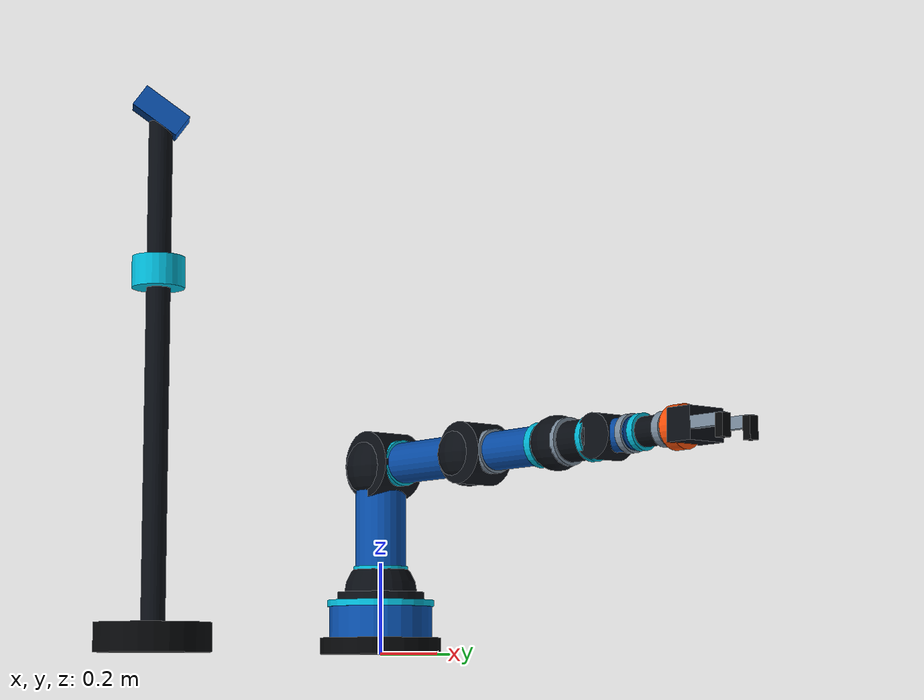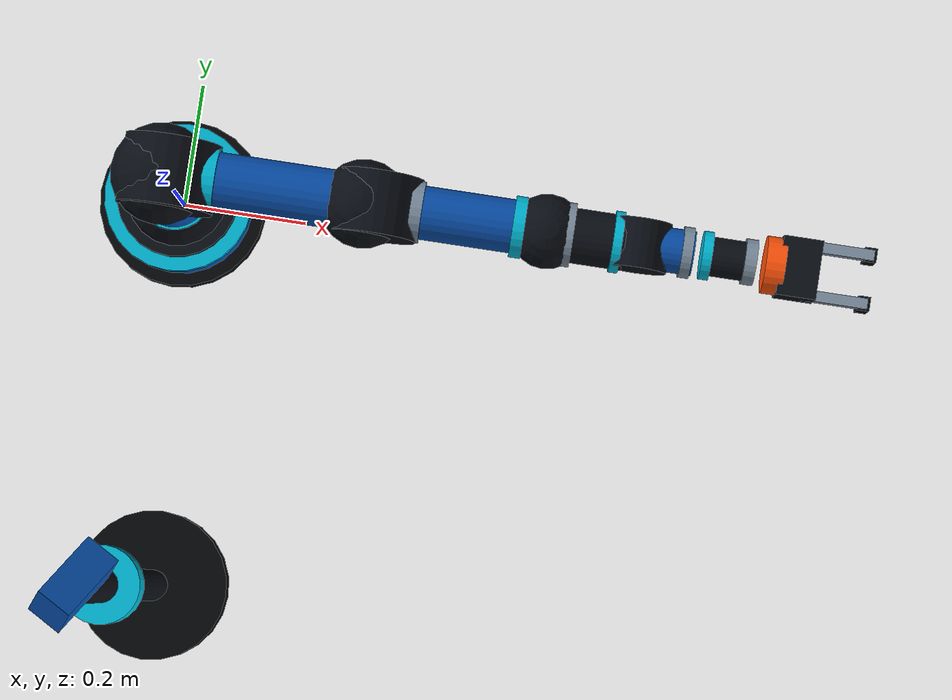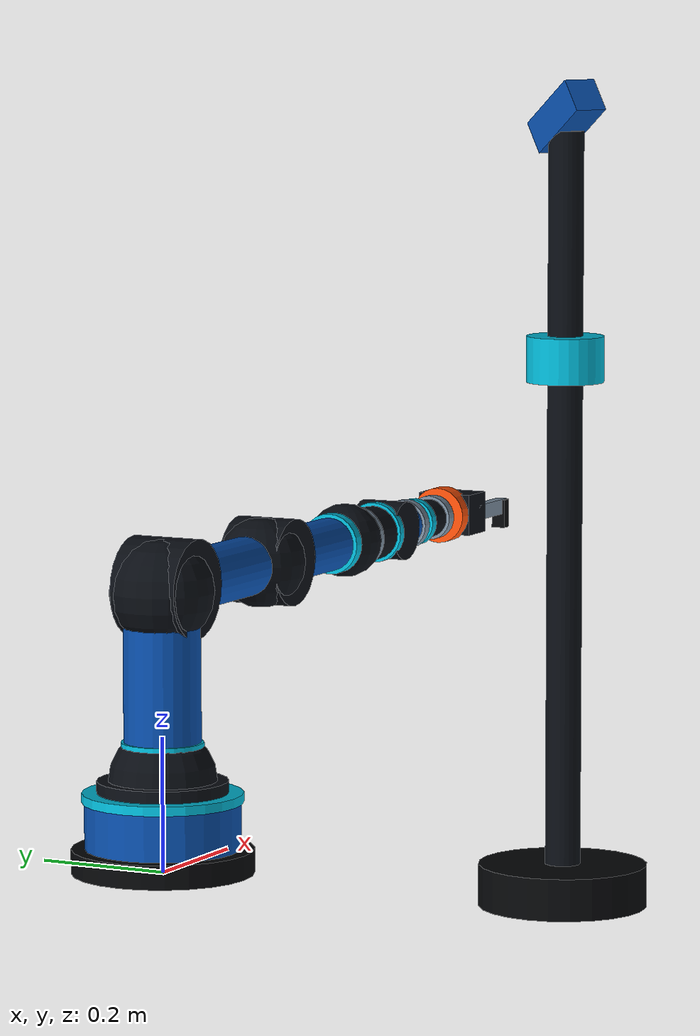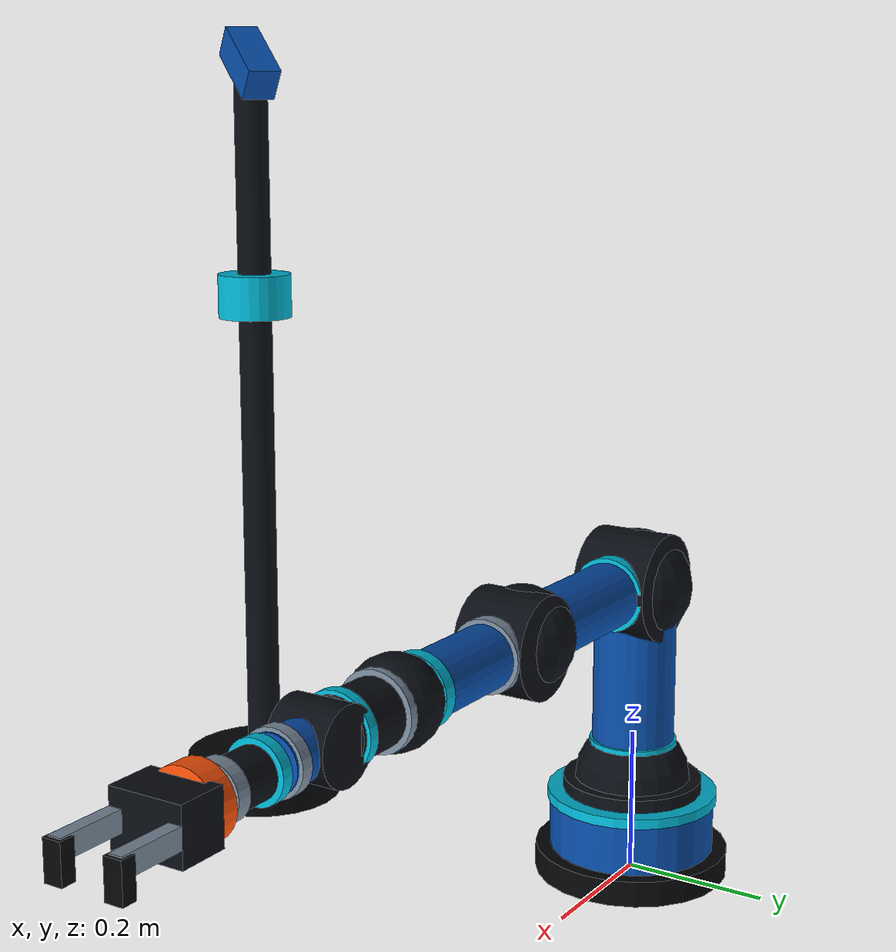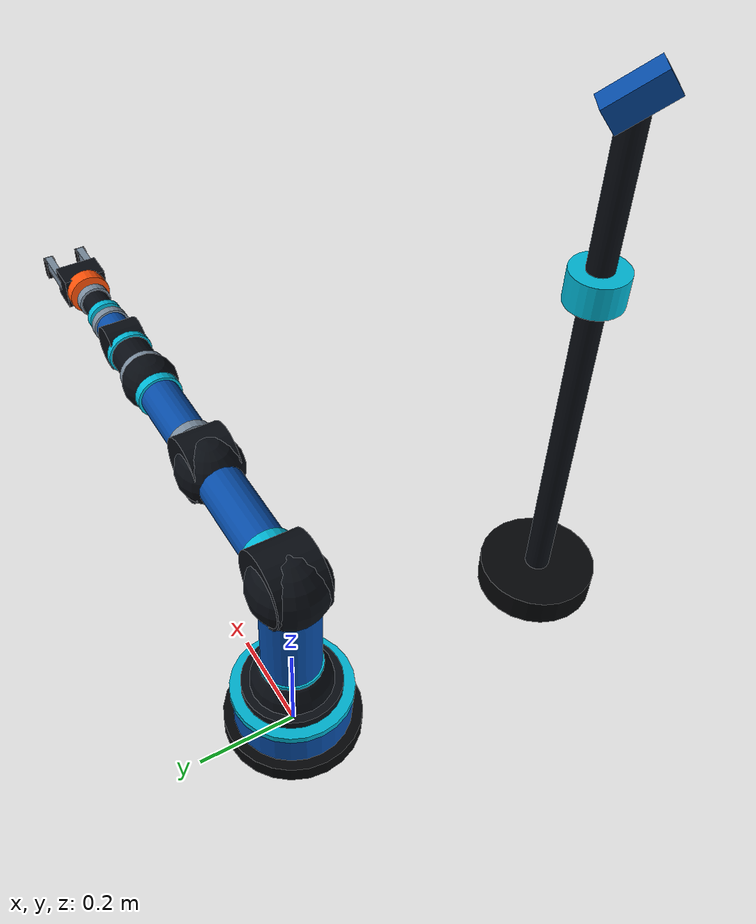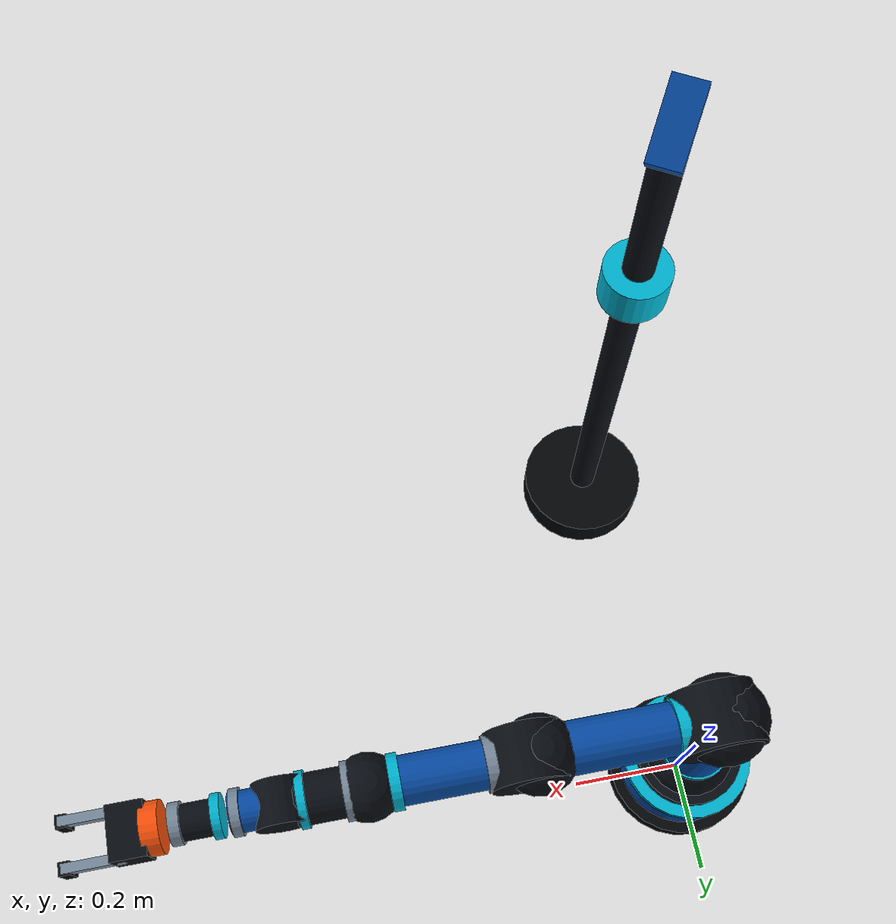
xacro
<?xml version="1.0"?>
<robot xmlns:xacro="http://www.ros.org/wiki/xacro" name="simple_arm">
  <xacro:arg name="use_mock_hardware" default="true"/>
  <xacro:arg name="use_gazebo" default="false"/>
  <xacro:arg name="controllers_file" default=""/>
  <xacro:arg name="enable_gripper_plugin" default="false"/>
  <xacro:arg name="enable_sensors" default="true"/>

  <material name="arm_blue"><color rgba="0.025 0.30 0.66 1.0"/></material>
  <material name="joint_dark"><color rgba="0.035 0.050 0.075 1.0"/></material>
  <material name="accent_cyan"><color rgba="0.00 0.72 0.84 1.0"/></material>
  <material name="machined_metal"><color rgba="0.48 0.55 0.62 1.0"/></material>
  <material name="rubber_black"><color rgba="0.015 0.020 0.028 1.0"/></material>
  <material name="tool_orange"><color rgba="1.00 0.32 0.035 1.0"/></material>

  <!-- A fixed world joint keeps the robot base anchored in Gazebo. -->
  <link name="world"/>
  <joint name="world_to_base" type="fixed">
    <parent link="world"/>
    <child link="base_link"/>
  </joint>

  <xacro:macro name="box_inertial" params="mass x y z">
    <inertial>
      <origin xyz="0 0 0" rpy="0 0 0"/>
      <mass value="${mass}"/>
      <inertia ixx="${mass * (y*y + z*z) / 12.0}" ixy="0" ixz="0"
               iyy="${mass * (x*x + z*z) / 12.0}" iyz="0"
               izz="${mass * (x*x + y*y) / 12.0}"/>
    </inertial>
  </xacro:macro>

  <link name="base_link">
    <visual><origin xyz="0 0 0.018"/><geometry><cylinder radius="0.135" length="0.036"/></geometry><material name="rubber_black"/></visual>
    <visual><origin xyz="0 0 0.070"/><geometry><cylinder radius="0.115" length="0.090"/></geometry><material name="arm_blue"/></visual>
    <visual><origin xyz="0 0 0.112"/><geometry><cylinder radius="0.119" length="0.014"/></geometry><material name="accent_cyan"/></visual>
    <visual><origin xyz="0 0 0.127"/><geometry><cylinder radius="0.097" length="0.020"/></geometry><material name="joint_dark"/></visual>
    <collision><origin xyz="0 0 0.06"/><geometry><cylinder radius="0.11" length="0.12"/></geometry></collision>
    <xacro:box_inertial mass="5.0" x="0.22" y="0.22" z="0.12"/>
  </link>

  <link name="link_1">
    <visual><origin xyz="0 0 0.15"/><geometry><cylinder radius="0.057" length="0.245"/></geometry><material name="arm_blue"/></visual>
    <visual><origin xyz="0 0 0.015"/><geometry><sphere radius="0.081"/></geometry><material name="joint_dark"/></visual>
    <visual><origin xyz="0 0 0.063"/><geometry><cylinder radius="0.061" length="0.022"/></geometry><material name="accent_cyan"/></visual>
    <visual><origin xyz="0 0 0.295"/><geometry><sphere radius="0.078"/></geometry><material name="joint_dark"/></visual>
    <visual><origin xyz="0 0 0.268"/><geometry><cylinder radius="0.061" length="0.020"/></geometry><material name="machined_metal"/></visual>
    <collision><origin xyz="0 0 0.15"/><geometry><cylinder radius="0.065" length="0.30"/></geometry></collision>
    <xacro:box_inertial mass="2.5" x="0.13" y="0.13" z="0.30"/>
  </link>
  <joint name="joint_1" type="revolute">
    <parent link="base_link"/><child link="link_1"/>
    <origin xyz="0 0 0.12"/><axis xyz="0 0 1"/>
    <limit lower="-3.14159" upper="3.14159" effort="80" velocity="1.5"/>
  </joint>

  <link name="link_2">
    <visual><origin xyz="0.16 0 0" rpy="0 1.5708 0"/><geometry><cylinder radius="0.045" length="0.255"/></geometry><material name="arm_blue"/></visual>
    <visual><origin xyz="0.012 0 0" rpy="1.5708 0 0"/><geometry><cylinder radius="0.074" length="0.105"/></geometry><material name="joint_dark"/></visual>
    <visual><origin xyz="0.075 0 0" rpy="0 1.5708 0"/><geometry><cylinder radius="0.051" length="0.020"/></geometry><material name="accent_cyan"/></visual>
    <visual><origin xyz="0.310 0 0"/><geometry><sphere radius="0.068"/></geometry><material name="joint_dark"/></visual>
    <collision><origin xyz="0.16 0 0" rpy="0 1.5708 0"/><geometry><cylinder radius="0.052" length="0.32"/></geometry></collision>
    <xacro:box_inertial mass="2.0" x="0.32" y="0.104" z="0.104"/>
  </link>
  <joint name="joint_2" type="revolute">
    <parent link="link_1"/><child link="link_2"/>
    <origin xyz="0 0 0.30"/><axis xyz="0 1 0"/>
    <limit lower="-2.35" upper="2.35" effort="70" velocity="1.5"/>
  </joint>

  <link name="link_3">
    <visual><origin xyz="0.14 0 0" rpy="0 1.5708 0"/><geometry><cylinder radius="0.041" length="0.220"/></geometry><material name="arm_blue"/></visual>
    <visual><origin xyz="0.010 0 0" rpy="1.5708 0 0"/><geometry><cylinder radius="0.066" length="0.095"/></geometry><material name="joint_dark"/></visual>
    <visual><origin xyz="0.070 0 0" rpy="0 1.5708 0"/><geometry><cylinder radius="0.047" length="0.018"/></geometry><material name="machined_metal"/></visual>
    <visual><origin xyz="0.270 0 0"/><geometry><sphere radius="0.057"/></geometry><material name="joint_dark"/></visual>
    <visual><origin xyz="0.226 0 0" rpy="0 1.5708 0"/><geometry><cylinder radius="0.047" length="0.018"/></geometry><material name="accent_cyan"/></visual>
    <collision><origin xyz="0.14 0 0" rpy="0 1.5708 0"/><geometry><cylinder radius="0.047" length="0.28"/></geometry></collision>
    <xacro:box_inertial mass="1.5" x="0.28" y="0.094" z="0.094"/>
  </link>
  <joint name="joint_3" type="revolute">
    <parent link="link_2"/><child link="link_3"/>
    <origin xyz="0.32 0 0"/><axis xyz="0 1 0"/>
    <limit lower="-2.60" upper="2.60" effort="60" velocity="1.8"/>
  </joint>

  <link name="link_4">
    <visual><origin xyz="0.055 0 0" rpy="0 1.5708 0"/><geometry><cylinder radius="0.042" length="0.105"/></geometry><material name="joint_dark"/></visual>
    <visual><origin xyz="0.020 0 0" rpy="0 1.5708 0"/><geometry><cylinder radius="0.049" length="0.018"/></geometry><material name="machined_metal"/></visual>
    <visual><origin xyz="0.096 0 0" rpy="0 1.5708 0"/><geometry><cylinder radius="0.047" length="0.014"/></geometry><material name="accent_cyan"/></visual>
    <collision><origin xyz="0.06 0 0" rpy="0 1.5708 0"/><geometry><cylinder radius="0.040" length="0.12"/></geometry></collision>
    <xacro:box_inertial mass="0.8" x="0.12" y="0.08" z="0.08"/>
  </link>
  <joint name="joint_4" type="revolute">
    <parent link="link_3"/><child link="link_4"/>
    <origin xyz="0.28 0 0"/><axis xyz="1 0 0"/>
    <limit lower="-3.14159" upper="3.14159" effort="35" velocity="2.2"/>
  </joint>

  <link name="link_5">
    <visual><origin xyz="0.05 0 0" rpy="0 1.5708 0"/><geometry><cylinder radius="0.034" length="0.085"/></geometry><material name="arm_blue"/></visual>
    <visual><origin xyz="0.010 0 0" rpy="1.5708 0 0"/><geometry><cylinder radius="0.046" length="0.075"/></geometry><material name="joint_dark"/></visual>
    <visual><origin xyz="0.082 0 0" rpy="0 1.5708 0"/><geometry><cylinder radius="0.039" length="0.016"/></geometry><material name="machined_metal"/></visual>
    <collision><origin xyz="0.05 0 0" rpy="0 1.5708 0"/><geometry><cylinder radius="0.035" length="0.10"/></geometry></collision>
    <xacro:box_inertial mass="0.5" x="0.10" y="0.07" z="0.07"/>
  </link>
  <joint name="joint_5" type="revolute">
    <parent link="link_4"/><child link="link_5"/>
    <origin xyz="0.12 0 0"/><axis xyz="0 1 0"/>
    <limit lower="-2.20" upper="2.20" effort="25" velocity="2.2"/>
  </joint>

  <link name="link_6">
    <visual><origin xyz="0.045 0 0" rpy="0 1.5708 0"/><geometry><cylinder radius="0.030" length="0.080"/></geometry><material name="joint_dark"/></visual>
    <visual><origin xyz="0.012 0 0" rpy="0 1.5708 0"/><geometry><cylinder radius="0.037" length="0.015"/></geometry><material name="accent_cyan"/></visual>
    <visual><origin xyz="0.078 0 0" rpy="0 1.5708 0"/><geometry><cylinder radius="0.035" length="0.018"/></geometry><material name="machined_metal"/></visual>
    <collision><origin xyz="0.05 0 0" rpy="0 1.5708 0"/><geometry><cylinder radius="0.030" length="0.10"/></geometry></collision>
    <xacro:box_inertial mass="0.35" x="0.10" y="0.06" z="0.06"/>
  </link>
  <joint name="joint_6" type="revolute">
    <parent link="link_5"/><child link="link_6"/>
    <origin xyz="0.10 0 0"/><axis xyz="1 0 0"/>
    <limit lower="-3.14159" upper="3.14159" effort="20" velocity="2.5"/>
  </joint>

  <link name="tool0">
    <visual><origin xyz="0.015 0 0" rpy="0 1.5708 0"/><geometry><cylinder radius="0.044" length="0.030"/></geometry><material name="tool_orange"/></visual>
    <visual><origin xyz="0.052 0 0"/><geometry><box size="0.060 0.090 0.065"/></geometry><material name="joint_dark"/></visual>
    <visual><origin xyz="0.112 0.037 0"/><geometry><box size="0.100 0.016 0.024"/></geometry><material name="machined_metal"/></visual>
    <visual><origin xyz="0.112 -0.037 0"/><geometry><box size="0.100 0.016 0.024"/></geometry><material name="machined_metal"/></visual>
    <visual><origin xyz="0.157 0.037 -0.012"/><geometry><box size="0.018 0.022 0.045"/></geometry><material name="rubber_black"/></visual>
    <visual><origin xyz="0.157 -0.037 -0.012"/><geometry><box size="0.018 0.022 0.045"/></geometry><material name="rubber_black"/></visual>
    <collision><origin xyz="0.045 0 0"/><geometry><box size="0.09 0.07 0.07"/></geometry></collision>
    <xacro:box_inertial mass="0.2" x="0.09" y="0.07" z="0.07"/>
  </link>
  <joint name="tool0_fixed_joint" type="fixed">
    <parent link="link_6"/><child link="tool0"/><origin xyz="0.10 0 0"/>
  </joint>

  <!-- Gazebo perception station. Fixed joints are published on /tf_static, while
       the articulated arm chain remains dynamic on /tf. -->
  <xacro:if value="$(arg enable_sensors)">
    <link name="sensor_mast_link">
      <visual>
        <origin xyz="0 0 0.55"/>
        <geometry><cylinder radius="0.025" length="1.10"/></geometry>
        <material name="joint_dark"/>
      </visual>
      <visual>
        <origin xyz="0 0 0.03"/>
        <geometry><cylinder radius="0.12" length="0.06"/></geometry>
        <material name="rubber_black"/>
      </visual>
      <collision>
        <origin xyz="0 0 0.55"/>
        <geometry><cylinder radius="0.03" length="1.10"/></geometry>
      </collision>
      <xacro:box_inertial mass="2.0" x="0.06" y="0.06" z="1.10"/>
    </link>
    <joint name="world_to_sensor_mast" type="fixed">
      <parent link="world"/>
      <child link="sensor_mast_link"/>
      <origin xyz="0.05 -0.62 0"/>
    </joint>

    <link name="depth_camera_link">
      <visual><geometry><box size="0.11 0.05 0.05"/></geometry><material name="arm_blue"/></visual>
      <collision><geometry><box size="0.11 0.05 0.05"/></geometry></collision>
      <xacro:box_inertial mass="0.18" x="0.11" y="0.05" z="0.05"/>
    </link>
    <joint name="sensor_mast_to_depth_camera" type="fixed">
      <parent link="sensor_mast_link"/>
      <child link="depth_camera_link"/>
      <origin xyz="0 0 1.12" rpy="0 0.62 1.05"/>
    </joint>
    <link name="depth_camera_optical_frame"/>
    <joint name="depth_camera_optical_joint" type="fixed">
      <parent link="depth_camera_link"/>
      <child link="depth_camera_optical_frame"/>
      <origin xyz="0 0 0" rpy="-1.570796 0 -1.570796"/>
    </joint>

    <link name="lidar_link">
      <visual><geometry><cylinder radius="0.055" length="0.065"/></geometry><material name="accent_cyan"/></visual>
      <collision><geometry><cylinder radius="0.055" length="0.065"/></geometry></collision>
      <xacro:box_inertial mass="0.25" x="0.11" y="0.11" z="0.065"/>
    </link>
    <joint name="sensor_mast_to_lidar" type="fixed">
      <parent link="sensor_mast_link"/>
      <child link="lidar_link"/>
      <origin xyz="0 0 0.78"/>
    </joint>
  </xacro:if>

  <ros2_control name="SimpleArmSystem" type="system">
    <hardware>
      <xacro:if value="$(arg use_gazebo)">
        <plugin>gazebo_ros2_control/GazeboSystem</plugin>
      </xacro:if>
      <xacro:unless value="$(arg use_gazebo)">
        <plugin>mock_components/GenericSystem</plugin>
        <param name="calculate_dynamics">false</param>
      </xacro:unless>
    </hardware>
    <xacro:macro name="mock_joint" params="joint_name initial_position">
      <joint name="${joint_name}">
        <command_interface name="position"/>
        <state_interface name="position"><param name="initial_value">${initial_position}</param></state_interface>
        <state_interface name="velocity"/>
      </joint>
    </xacro:macro>
    <xacro:mock_joint joint_name="joint_1" initial_position="0.0"/>
    <xacro:mock_joint joint_name="joint_2" initial_position="-0.65"/>
    <xacro:mock_joint joint_name="joint_3" initial_position="1.15"/>
    <xacro:mock_joint joint_name="joint_4" initial_position="0.0"/>
    <xacro:mock_joint joint_name="joint_5" initial_position="-0.50"/>
    <xacro:mock_joint joint_name="joint_6" initial_position="0.0"/>
  </ros2_control>

  <xacro:if value="$(arg use_gazebo)">
    <gazebo reference="joint_1"><dynamics damping="0.25" friction="0.05"/></gazebo>
    <gazebo reference="joint_2"><dynamics damping="0.30" friction="0.06"/></gazebo>
    <gazebo reference="joint_3"><dynamics damping="0.25" friction="0.05"/></gazebo>
    <gazebo reference="joint_4"><dynamics damping="0.15" friction="0.03"/></gazebo>
    <gazebo reference="joint_5"><dynamics damping="0.12" friction="0.03"/></gazebo>
    <gazebo reference="joint_6"><dynamics damping="0.10" friction="0.02"/></gazebo>
    <gazebo>
      <plugin filename="libgazebo_ros2_control.so" name="gazebo_ros2_control">
        <parameters>$(arg controllers_file)</parameters>
      </plugin>
    </gazebo>
    <xacro:if value="$(arg enable_gripper_plugin)">
      <gazebo>
        <plugin filename="libsimple_arm_gripper_plugin.so" name="simple_arm_gripper">
          <robot_link>link_6</robot_link>
          <object_model>pick_cube</object_model>
          <object_link>link</object_link>
          <command_topic>/simple_arm/gripper_command</command_topic>
        </plugin>
      </gazebo>
    </xacro:if>
    <xacro:if value="$(arg enable_sensors)">
      <gazebo reference="sensor_mast_link"><material>Gazebo/DarkGrey</material></gazebo>
      <gazebo reference="depth_camera_link">
        <material>Gazebo/Blue</material>
        <sensor name="depth_camera" type="depth">
          <always_on>true</always_on>
          <update_rate>15</update_rate>
          <visualize>true</visualize>
          <camera>
            <horizontal_fov>1.0472</horizontal_fov>
            <image><width>320</width><height>240</height><format>R8G8B8</format></image>
            <depth_camera/>
            <clip><near>0.15</near><far>3.0</far></clip>
            <noise><type>gaussian</type><mean>0.0</mean><stddev>0.002</stddev></noise>
          </camera>
          <plugin name="depth_camera_ros" filename="libgazebo_ros_camera.so">
            <ros><namespace>/simple_arm/sensors</namespace></ros>
            <camera_name>depth_camera</camera_name>
            <frame_name>depth_camera_optical_frame</frame_name>
            <min_depth>0.15</min_depth>
            <max_depth>3.0</max_depth>
          </plugin>
        </sensor>
      </gazebo>
      <gazebo reference="lidar_link">
        <material>Gazebo/Turquoise</material>
        <sensor name="lidar_3d" type="ray">
          <always_on>true</always_on>
          <update_rate>8</update_rate>
          <visualize>false</visualize>
          <ray>
            <scan>
              <horizontal>
                <samples>360</samples><resolution>1</resolution>
                <min_angle>-3.14159</min_angle><max_angle>3.14159</max_angle>
              </horizontal>
              <vertical>
                <samples>24</samples><resolution>1</resolution>
                <min_angle>-0.43633</min_angle><max_angle>0.43633</max_angle>
              </vertical>
            </scan>
            <range><min>0.12</min><max>4.0</max><resolution>0.01</resolution></range>
            <noise><type>gaussian</type><mean>0.0</mean><stddev>0.005</stddev></noise>
          </ray>
          <plugin name="lidar_3d_ros" filename="libgazebo_ros_ray_sensor.so">
            <ros>
              <namespace>/simple_arm/sensors</namespace>
              <remapping>~/out:=lidar/points</remapping>
            </ros>
            <output_type>sensor_msgs/PointCloud2</output_type>
            <frame_name>lidar_link</frame_name>
          </plugin>
        </sensor>
      </gazebo>
    </xacro:if>
  </xacro:if>
</robot>
